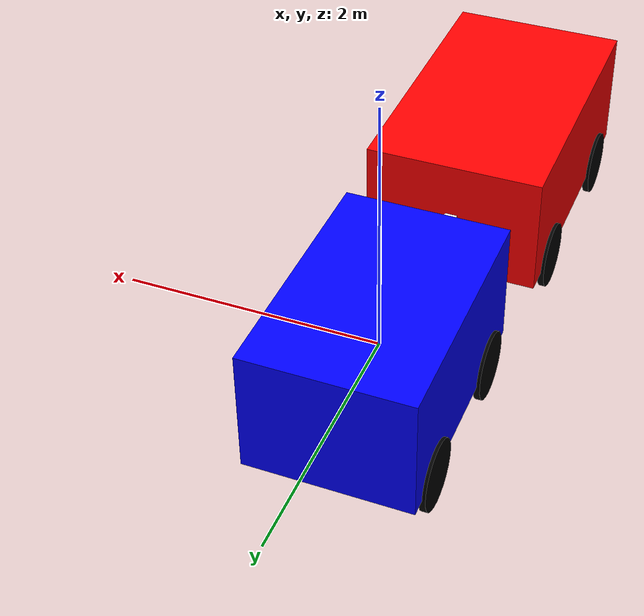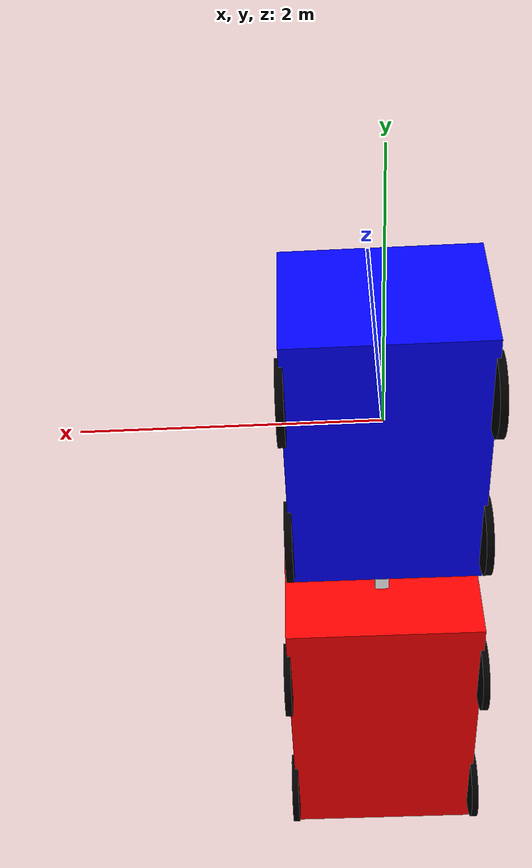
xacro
<?xml version="1.0"?>
<robot xmlns:xacro="http://ros.org/wiki/xacro" name="car_trailer_robot">

  <xacro:macro name="wheel" params="name parent_link origin_xyz origin_rpy axis_xyz">
    <link name="${name}">
      <visual>
        <geometry>
          <cylinder radius="0.27" length="0.05"/>
        </geometry>
        <material name="black">
          <color rgba="0 0 0 1"/>
        </material>
      </visual>
      <collision>
        <geometry>
          <cylinder radius="0.27" length="0.05"/>
        </geometry>
      </collision>
      <inertial>
        <mass value="1"/>
        <inertia ixx="0.01" ixy="0" ixz="0" iyy="0.01" iyz="0" izz="0.01"/>
      </inertial>
    </link>

    <joint name="${name}_joint" type="continuous">
      <parent link="${parent_link}"/>
      <child link="${name}"/>
      <origin xyz="${origin_xyz}" rpy="${origin_rpy}"/>
      <axis xyz="${axis_xyz}"/>
    </joint>
  </xacro:macro>

  <!-- Car Base Link -->
  <link name="car_base">
    <visual>
      <geometry>
        <box size="1.3 2 1"/>
      </geometry>
      <material name="blue">
        <color rgba="0 0 1 1"/>
      </material>
    </visual>
    <collision>
      <geometry>
        <box size="1.3 2 0.1"/>
      </geometry>
    </collision>
    <inertial>
      <mass value="10"/>
      <inertia ixx="0.1" ixy="0" ixz="0" iyy="0.1" iyz="0" izz="0.1"/>
    </inertial>
  </link>

  <!-- Car Wheels -->
  <xacro:wheel name="car_wheel_fl" parent_link="car_base" origin_xyz="-0.65 0.6 -0.5" origin_rpy="0 -1.57070 0" axis_xyz="0 0 -1"/>
  <xacro:wheel name="car_wheel_fr" parent_link="car_base" origin_xyz="0.65 0.6 -0.5" origin_rpy="0 1.5707 0" axis_xyz="0 0 1"/>
  <xacro:wheel name="car_wheel_rl" parent_link="car_base" origin_xyz="-0.65 -0.6 -0.5" origin_rpy="0 -1.57070 0" axis_xyz="0 0 -1"/>
  <xacro:wheel name="car_wheel_rr" parent_link="car_base" origin_xyz="0.65 -0.6 -0.5" origin_rpy="0 1.5707 0" axis_xyz="0 0 1"/>

  <!-- Trailer Base Link -->
  <link name="trailer_base">
    <visual>
      <geometry>
        <box size="1.44 2.4 1"/>
      </geometry>
      <material name="red">
        <color rgba="1 0 0 1"/>
      </material>
    </visual>
    <collision>
      <geometry>
        <box size="1.44 2.4 1"/>
      </geometry>
    </collision>
    <inertial>
      <mass value="15"/>
      <inertia ixx="0.15" ixy="0" ixz="0" iyy="0.15" iyz="0" izz="0.15"/>
    </inertial>
  </link>

  <!-- Trailer Connector Link -->
  <link name="trailer_connector_base">
    <visual>
      <geometry>
        <box size="0.1 1.3 0.1"/>
      </geometry>
      <material name="cyan">
        <color rgba="1 1 1 1"/>
      </material>
    </visual>
    <collision>
      <geometry>
        <box size="0.1 1.3 0.1"/>
      </geometry>
    </collision>
    <inertial>
      <mass value="0.1"/>
      <inertia ixx="0.1" ixy="0" ixz="0" iyy="0.1" iyz="0" izz="0.1"/>
    </inertial>
  </link>

  <!-- Trailer Wheels -->
  <xacro:wheel name="trailer_wheel_fl" parent_link="trailer_base" origin_xyz="-0.72 0.72 -0.5" origin_rpy="0 -1.57070 0" axis_xyz="0 0 -1"/>
  <xacro:wheel name="trailer_wheel_fr" parent_link="trailer_base" origin_xyz="0.72 0.72 -0.5" origin_rpy="0 1.5707 0" axis_xyz="0 0 1"/>
  <xacro:wheel name="trailer_wheel_rl" parent_link="trailer_base" origin_xyz="-0.72 -0.72 -0.5" origin_rpy="0 -1.57070 0" axis_xyz="0 0 -1"/>
  <xacro:wheel name="trailer_wheel_rr" parent_link="trailer_base" origin_xyz="0.72 -0.72 -0.5" origin_rpy="0 1.5707 0" axis_xyz="0 0 1"/>

  <!-- Joint between Car base and Trailer connector -->
  <joint name="car_trailer_connector_joint" type="revolute">
    <parent link="car_base"/>
    <child link="trailer_connector_base"/>
    <origin xyz="0 -1 0" rpy="0 0 0"/>
    <axis xyz="0 0 1"/>
    <limit effort="1000" lower="-1.1" upper="1.1" velocity="1"/>
  </joint>

  <!-- Joint between Trailer connector and Trailer -->
  <joint name="car_trailer_joint" type="fixed">
    <parent link="trailer_connector_base"/>
    <child link="trailer_base"/>
    <origin xyz="0 -1.8 0" rpy="0 0 0"/>
    <axis xyz="0 0 1"/>
    <limit effort="1000" lower="-3.14159" upper="3.14159" velocity="1"/>
  </joint>

</robot>
